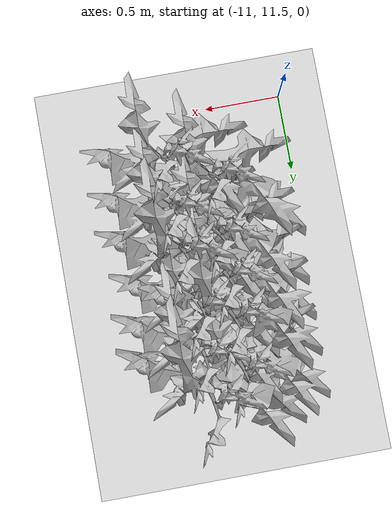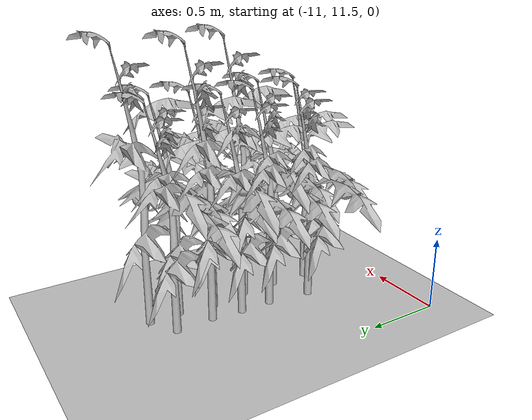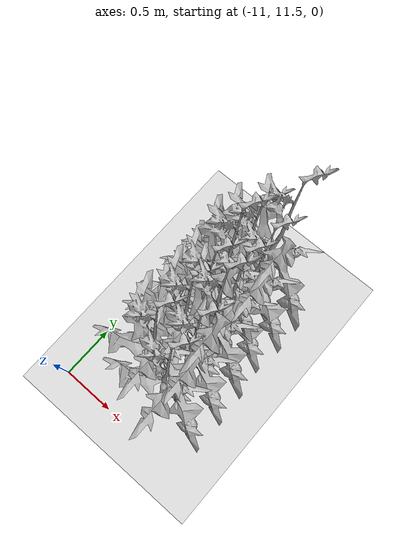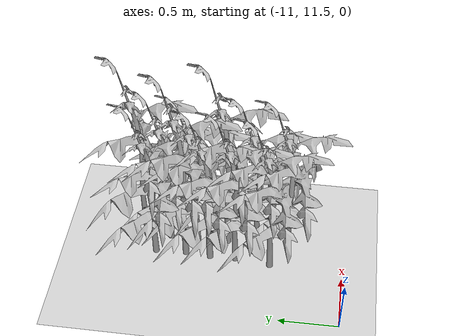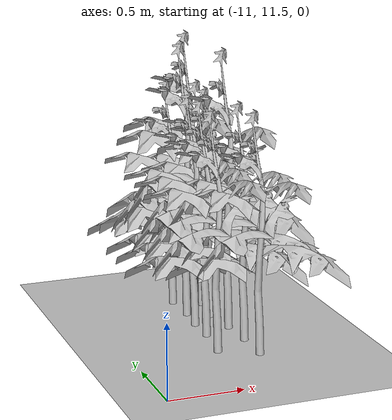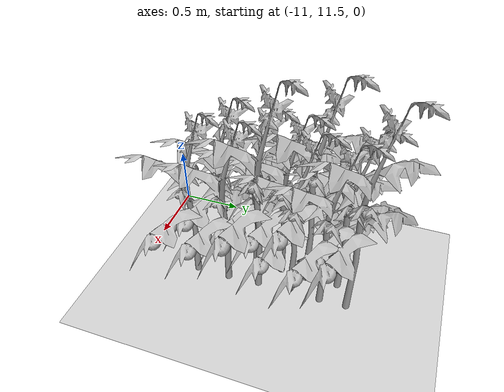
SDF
<sdf version="1.6">
 <world name="default">
  <model name="ground_plane">
   <static>1</static>
   <link name="link">
    <collision name="collision">
     <geometry><plane><normal>0 0 1</normal><size>100 100</size></plane></geometry>
     <surface>
      <contact><collide_bitmask>65535</collide_bitmask></contact>
      <friction><ode><mu>100</mu><mu2>50</mu2></ode></friction>
     </surface>
    </collision>
    <visual name="visual">
     <cast_shadows>0</cast_shadows>
     <geometry><plane><normal>0 0 1</normal><size>100 100</size></plane></geometry>
     <material>
      <script><uri>file://media/materials/scripts/gazebo.material</uri><name>Gazebo/Grey</name></script>
     </material>
    </visual>
   </link>
  </model>
  <model name="Front_Plant_1_32">
   <model name="tomato_plant_medium">
    <static>1</static>
    <link name="link">
     <collision name="collision">
      <pose>0 0 0 1.5708 -0 0</pose>
      <geometry><mesh><scale>0.5 0.5 0.5</scale><uri>model://stick/meshes/stick.dae</uri></mesh></geometry>
     </collision>
     <visual name="visual">
      <geometry>
       <mesh><scale>5e-06 5e-06 6e-06</scale><uri>model://tomato_plant_medium/meshes/tomato-plant.dae</uri></mesh>
      </geometry>
     </visual>
    </link>
    <pose>0.087453 -0.595994 0.012396 0 -0 0</pose>
   </model>
   <model name="tomato_plant_medium_0">
    <static>1</static>
    <link name="link">
     <collision name="collision">
      <pose>0 0 0 1.5708 -0 0</pose>
      <geometry><mesh><scale>0.5 0.5 0.5</scale><uri>model://stick/meshes/stick.dae</uri></mesh></geometry>
     </collision>
     <visual name="visual">
      <geometry>
       <mesh><scale>5e-06 5e-06 6e-06</scale><uri>model://tomato_plant_medium/meshes/tomato-plant.dae</uri></mesh>
      </geometry>
     </visual>
    </link>
    <pose>-0.086166 -0.251822 0.012396 0 -0 0</pose>
   </model>
   <model name="tomato_plant_medium_1">
    <static>1</static>
    <link name="link">
     <collision name="collision">
      <pose>0 0 0 1.5708 -0 0</pose>
      <geometry><mesh><scale>0.5 0.5 0.5</scale><uri>model://stick/meshes/stick.dae</uri></mesh></geometry>
     </collision>
     <visual name="visual">
      <geometry>
       <mesh><scale>5e-06 5e-06 6e-06</scale><uri>model://tomato_plant_medium/meshes/tomato-plant.dae</uri></mesh>
      </geometry>
     </visual>
    </link>
    <pose>0.080199 0.118127 0.012396 0 -0 0</pose>
   </model>
   <model name="tomato_plant_small">
    <static>1</static>
    <link name="link">
     <collision name="collision">
      <pose>0 0 0 1.5708 -0 0</pose>
      <geometry><mesh><scale>0.5 0.45 0.5</scale><uri>model://stick/meshes/stick.dae</uri></mesh></geometry>
     </collision>
     <visual name="visual">
      <geometry>
       <mesh><scale>5e-06 5e-06 5e-06</scale><uri>model://tomato_plant_small/meshes/tomato-plant.dae</uri></mesh>
      </geometry>
     </visual>
    </link>
    <pose>0.099683 -1.12011 0.012396 0 -0 0</pose>
   </model>
   <model name="tomato_plant_small_0">
    <static>1</static>
    <link name="link">
     <collision name="collision">
      <pose>0 0 0 1.5708 -0 0</pose>
      <geometry><mesh><scale>0.5 0.45 0.5</scale><uri>model://stick/meshes/stick.dae</uri></mesh></geometry>
     </collision>
     <visual name="visual">
      <geometry>
       <mesh><scale>5e-06 5e-06 5e-06</scale><uri>model://tomato_plant_small/meshes/tomato-plant.dae</uri></mesh>
      </geometry>
     </visual>
    </link>
    <pose>-0.138771 -0.983982 0.012396 0 -0 0</pose>
   </model>
   <model name="tomato_plant_small_1">
    <static>1</static>
    <link name="link">
     <collision name="collision">
      <pose>0 0 0 1.5708 -0 0</pose>
      <geometry><mesh><scale>0.5 0.45 0.5</scale><uri>model://stick/meshes/stick.dae</uri></mesh></geometry>
     </collision>
     <visual name="visual">
      <geometry>
       <mesh><scale>5e-06 5e-06 5e-06</scale><uri>model://tomato_plant_small/meshes/tomato-plant.dae</uri></mesh>
      </geometry>
     </visual>
    </link>
    <pose>0.101334 -0.848814 0.012396 0 -0 0</pose>
   </model>
   <model name="tomato_plant_small_2">
    <static>1</static>
    <link name="link">
     <collision name="collision">
      <pose>0 0 0 1.5708 -0 0</pose>
      <geometry><mesh><scale>0.5 0.45 0.5</scale><uri>model://stick/meshes/stick.dae</uri></mesh></geometry>
     </collision>
     <visual name="visual">
      <geometry>
       <mesh><scale>5e-06 5e-06 5e-06</scale><uri>model://tomato_plant_small/meshes/tomato-plant.dae</uri></mesh>
      </geometry>
     </visual>
    </link>
    <pose>-0.103369 -0.683189 0.012396 0 -0 0</pose>
   </model>
   <model name="tomato_plant_small_3">
    <static>1</static>
    <link name="link">
     <collision name="collision">
      <pose>0 0 0 1.5708 -0 0</pose>
      <geometry><mesh><scale>0.5 0.45 0.5</scale><uri>model://stick/meshes/stick.dae</uri></mesh></geometry>
     </collision>
     <visual name="visual">
      <geometry>
       <mesh><scale>5e-06 5e-06 5e-06</scale><uri>model://tomato_plant_small/meshes/tomato-plant.dae</uri></mesh>
      </geometry>
     </visual>
    </link>
    <pose>-0.104381 -0.464811 0.012396 0 -0 0</pose>
   </model>
   <model name="tomato_plant_small_4">
    <static>1</static>
    <link name="link">
     <collision name="collision">
      <pose>0 0 0 1.5708 -0 0</pose>
      <geometry><mesh><scale>0.5 0.45 0.5</scale><uri>model://stick/meshes/stick.dae</uri></mesh></geometry>
     </collision>
     <visual name="visual">
      <geometry>
       <mesh><scale>5e-06 5e-06 5e-06</scale><uri>model://tomato_plant_small/meshes/tomato-plant.dae</uri></mesh>
      </geometry>
     </visual>
    </link>
    <pose>0.055604 -0.336879 0.012396 0 -0 0</pose>
   </model>
   <model name="tomato_plant_small_5">
    <static>1</static>
    <link name="link">
     <collision name="collision">
      <pose>0 0 0 1.5708 -0 0</pose>
      <geometry><mesh><scale>0.5 0.45 0.5</scale><uri>model://stick/meshes/stick.dae</uri></mesh></geometry>
     </collision>
     <visual name="visual">
      <geometry>
       <mesh><scale>5e-06 5e-06 5e-06</scale><uri>model://tomato_plant_small/meshes/tomato-plant.dae</uri></mesh>
      </geometry>
     </visual>
    </link>
    <pose>0.085059 -0.092572 0.012396 0 -0 0</pose>
   </model>
   <model name="tomato_plant_small_6">
    <static>1</static>
    <link name="link">
     <collision name="collision">
      <pose>0 0 0 1.5708 -0 0</pose>
      <geometry><mesh><scale>0.5 0.45 0.5</scale><uri>model://stick/meshes/stick.dae</uri></mesh></geometry>
     </collision>
     <visual name="visual">
      <geometry>
       <mesh><scale>5e-06 5e-06 5e-06</scale><uri>model://tomato_plant_small/meshes/tomato-plant.dae</uri></mesh>
      </geometry>
     </visual>
    </link>
    <pose>-0.096345 0.008888 0.012396 0 -0 0</pose>
   </model>
   <static>0</static>
   <pose>-10.2871 13.0852 0 0 -0 0</pose>
  </model>
 </world>
</sdf>
